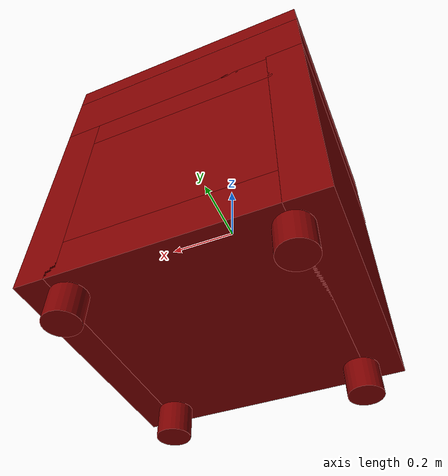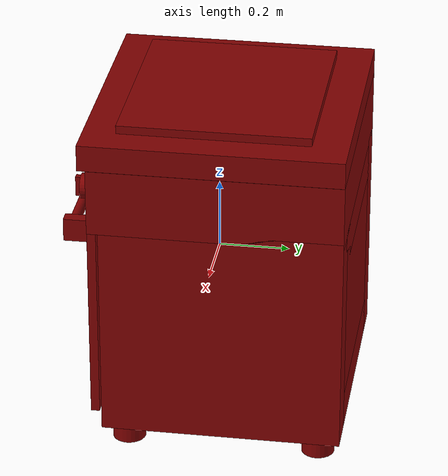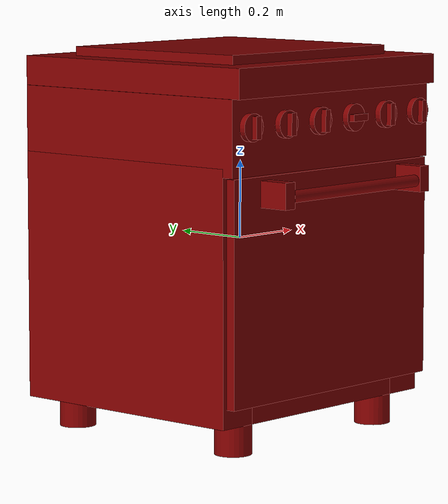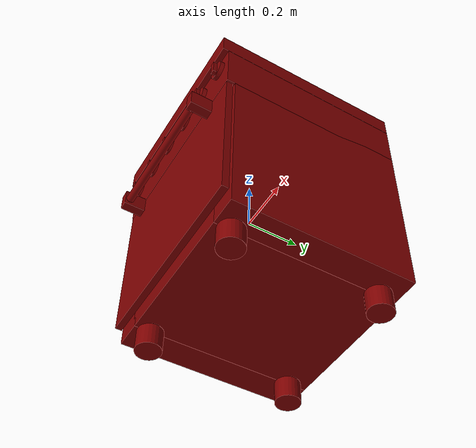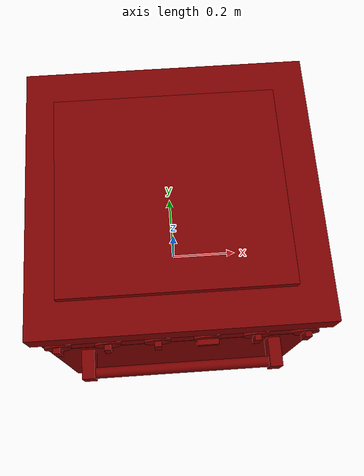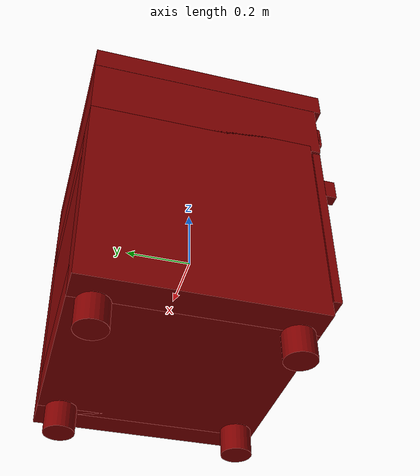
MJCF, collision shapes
<?xml version='1.0' encoding='UTF-8'?>
<mujoco model="model">
  <compiler angle="radian"/>
  <asset>
    <mesh file="visuals/knob_front_left.obj" name="knob_front_left_vis"/>
    <mesh file="visuals/knob_front_right.obj" name="knob_front_right_vis"/>
    <mesh file="visuals/knob_rear_left.obj" name="knob_rear_left_vis"/>
    <mesh file="visuals/knob_rear_right.obj" name="knob_rear_right_vis"/>
    <mesh file="visuals/Body001.obj" name="Body001_vis"/>
    <mesh file="visuals/Body002.obj" name="Body002_vis"/>
    <mesh file="visuals/Door001.obj" name="Door001_vis"/>
    <mesh file="visuals/Door001_Clear.obj" name="Door001_Clear_vis"/>
    <mesh file="visuals/Knob001.obj" name="Knob001_vis"/>
    <mesh file="visuals/Knob002.obj" name="Knob002_vis"/>
    <mesh file="visuals/Shelf001.obj" name="Shelf001_vis"/>
    <mesh file="visuals/Shelf002.obj" name="Shelf002_vis"/>
    <texture file="visuals/T_BC001.png" name="Body001_material" type="2d"/>
    <material name="Body001_material" rgba="1 1 1 1.0" texture="Body001_material" shininess="0.1" specular="2"/>
    <texture file="visuals/T_BC001.png" name="knob_front_left_material" type="2d"/>
    <material name="knob_front_left_material" rgba="1 1 1 1.0" texture="knob_front_left_material" shininess="0.1" specular="1"/>
    <texture file="visuals/T_BC001.png" name="knob_front_right_material" type="2d"/>
    <material name="knob_front_right_material" rgba="1 1 1 1.0" texture="knob_front_right_material" shininess="0.1" specular="1"/>
    <texture file="visuals/T_BC001.png" name="knob_rear_left_material" type="2d"/>
    <material name="knob_rear_left_material" rgba="1 1 1 1.0" texture="knob_rear_left_material" shininess="0.1" specular="1"/>
    <texture file="visuals/T_BC001.png" name="knob_rear_right_material" type="2d"/>
    <material name="knob_rear_right_material" rgba="1 1 1 1.0" texture="knob_rear_right_material" shininess="0.1" specular="1"/>
    <texture file="visuals/T_BC001.png" name="Body002_material" type="2d"/>
    <material name="Body002_material" rgba="1 1 1 1.0" texture="Body002_material" shininess="0.1" specular="1"/>
    <texture file="visuals/T_BC001.png" name="Door001_material" type="2d"/>
    <material name="Door001_material" rgba="1 1 1 1.0" texture="Door001_material" shininess="0.1" specular="1"/>
    <material name="Door001_Clear_material" rgba="0.3919156491756439 0.3919156491756439 0.3919156491756439 0.5" shininess="0.1" specular="1"/>
    <texture file="visuals/T_BC001.png" name="Knob001_material" type="2d"/>
    <material name="Knob001_material" rgba="1 1 1 1.0" texture="Knob001_material" shininess="0.1" specular="1"/>
    <texture file="visuals/T_BC001.png" name="Knob002_material" type="2d"/>
    <material name="Knob002_material" rgba="1 1 1 1.0" texture="Knob002_material" shininess="0.1" specular="1"/>
    <texture file="visuals/T_BC001.png" name="Shelf001_material" type="2d"/>
    <material name="Shelf001_material" rgba="1 1 1 1.0" texture="Shelf001_material" shininess="0.1" specular="1"/>
    <texture file="visuals/T_BC001.png" name="Shelf002_material" type="2d"/>
    <material name="Shelf002_material" rgba="1 1 1 1.0" texture="Shelf002_material" shininess="0.1" specular="1"/>
  </asset>
  <default>
    <default class="visual">
      <geom conaffinity="0" contype="0" group="1" type="mesh"/>
    </default>
    <default class="collision">
      <geom group="0" rgba="0.5 0 0 0.5"/>
    </default>
    <default class="spawn">
      <geom group="0" rgba="1 1 1 0.5" contype="0" conaffinity="0"/>
      <site group="0" rgba="1 1 1 0.5"/>
    </default>
    <default class="region">
      <geom group="1" conaffinity="0" contype="0" rgba="0 1 0 0"/>
    </default>
  </default>
  <worldbody>
    <body>
      <body name="object">
        <site type="cylinder" rgba="0.3 0.4 1 0.5" size="0.07357610762119293 0.0070569878444075584" pos="-0.15963366627693176 -0.10725317895412445 0.468623548746109" name="burner_on_front_left"/>
        <site type="cylinder" rgba="0.3 0.4 1 0.5" size="0.07357610762119293 0.0070569878444075584" pos="0.15184441208839417 -0.10725317895412445 0.468623548746109" name="burner_on_front_right"/>
        <site type="cylinder" rgba="0.3 0.4 1 0.5" size="0.07357610762119293 0.0070569878444075584" pos="-0.15963366627693176 0.1568083018064499 0.468623548746109" name="burner_on_rear_left"/>
        <site type="cylinder" rgba="0.3 0.4 1 0.5" size="0.07357610762119293 0.0070569878444075584" pos="0.15184441208839417 0.1568083018064499 0.468623548746109" name="burner_on_rear_right"/>
        <geom mesh="Body001_vis" type="mesh" solimp="0.998 0.998 0.001" solref="0.001 1" density="100" friction="0.95 0.3 0.1" class="visual" material="Body001_material"/>
        <geom class="collision" type="box" pos="0.0 0.03086765669286251 0.43377214670181274" size="0.3763693869113922 0.3646935522556305 0.03754124045372009" quat="1.0 0.0 0.0 0.0"/>
        <geom class="collision" type="box" pos="-0.006305759772658348 0.026157546788454056 0.47956278920173645" size="0.2919226288795471 0.2680940330028534 0.01525197271257639" quat="1.0 0.0 0.0 0.0"/>
        <geom class="collision" type="box" pos="0.0 0.04199814796447754 0.30052563548088074" size="0.3763693869113922 0.3535631000995636 0.09539087116718292" quat="1.0 0.0 0.0 0.0"/>
        <geom class="collision" type="box" pos="-0.32309895753860474 0.057262521237134933 -0.09348022937774658" size="0.05327043682336807 0.3382987082004547 0.31983500719070435" quat="1.0 0.0 0.0 0.0"/>
        <geom class="collision" type="box" pos="0.32322534918785095 0.057262521237134933 -0.09348022937774658" size="0.05314407870173454 0.3382987082004547 0.31983500719070435" quat="1.0 0.0 0.0 0.0"/>
        <geom class="collision" type="box" pos="0.006585642695426941 0.057262521237134933 -0.3596256971359253" size="0.2886805534362793 0.3382987082004547 0.053689561784267426" quat="1.0 0.0 0.0 0.0"/>
        <geom class="collision" type="box" pos="0.006585642695426941 0.2979070842266083 -0.05163457989692688" size="0.2886805534362793 0.09765408933162689 0.2812975347042084" quat="1.0 0.0 0.0 0.0"/>
        <geom class="collision" type="box" pos="0.006585642695426941 0.057262521237134933 0.16087020933628082" size="0.2886805534362793 0.3382987082004547 0.053689561784267426" quat="1.0 0.0 0.0 0.0"/>
        <geom class="collision" type="cylinder" pos="-0.27166327834129333 0.32449132204055786 -0.4482637047767639" size="0.04706542566418648 0.04655295982956886" quat="1.0 0.0 0.0 0.0"/>
        <geom class="collision" type="cylinder" pos="0.2722174823284149 0.32449132204055786 -0.4482637047767639" size="0.04706542566418648 0.04655295982956886" quat="1.0 0.0 0.0 0.0"/>
        <geom class="collision" type="cylinder" pos="0.2722174823284149 -0.22101905941963196 -0.4482637047767639" size="0.04706542566418648 0.04655295982956886" quat="1.0 0.0 0.0 0.0"/>
        <geom class="collision" type="cylinder" pos="-0.2722606658935547 -0.22101905941963196 -0.4482637047767639" size="0.04706542566418648 0.04655295982956886" quat="1.0 0.0 0.0 0.0"/>
        <geom class="collision" type="box" pos="-0.25629091262817383 -0.033120300620794296 -0.04849499091506004" size="0.02580404467880726 0.20058277249336243 0.0038279599975794554" quat="1.0 0.0 0.0 0.0"/>
        <geom class="collision" type="box" pos="-0.25629091262817383 -0.01993267424404621 -0.06944065541028976" size="0.02580404467880726 0.20058277249336243 0.0038279599975794554" quat="1.0 0.0 0.0 0.0"/>
        <geom class="collision" type="box" pos="-0.25629091262817383 -0.01993267424404621 -0.20191225409507751" size="0.02580404467880726 0.20058277249336243 0.0038279599975794554" quat="1.0 0.0 0.0 0.0"/>
        <geom class="collision" type="box" pos="-0.25629091262817383 -0.033120300620794296 -0.18262764811515808" size="0.02580404467880726 0.20058277249336243 0.0038279599975794554" quat="1.0 0.0 0.0 0.0"/>
        <geom class="collision" type="box" pos="0.26043957471847534 -0.033120300620794296 -0.18262764811515808" size="0.02580404467880726 0.20058277249336243 0.0038279599975794554" quat="1.0 0.0 0.0 0.0"/>
        <geom class="collision" type="box" pos="0.25882387161254883 -0.01993267424404621 -0.20191225409507751" size="0.02580404467880726 0.20058277249336243 0.0038279599975794554" quat="1.0 0.0 0.0 0.0"/>
        <geom class="collision" type="box" pos="0.25882387161254883 -0.01993267424404621 -0.06903617084026337" size="0.02580404467880726 0.20058277249336243 0.0038279599975794554" quat="1.0 0.0 0.0 0.0"/>
        <geom class="collision" type="box" pos="0.26043957471847534 -0.033120300620794296 -0.04975156486034393" size="0.02580404467880726 0.20058277249336243 0.0038279599975794554" quat="1.0 0.0 0.0 0.0"/>
        <body name="knob_front_left">
          <joint axis="0.0 -1.0 0.0" pos="-0.32040098309516907 -0.3286569118499756 0.3257809281349182" limited="true" name="knob_front_left_joint" range="0.0 3.141592653589793" type="hinge" damping="0.05" armature="0.001"/>
          <geom mesh="knob_front_left_vis" type="mesh" solimp="0.998 0.998 0.001" solref="0.001 1" density="100" friction="0.95 0.3 0.1" class="visual" material="knob_front_left_material"/>
          <geom class="collision" type="cylinder" pos="-0.3210730254650116 -0.32377225160598755 0.32581019401550293" size="0.034505799412727356 0.00798241887241602" quat="0.7071067094802856 0.7071068286895752 0.0 0.0"/>
          <geom class="collision" type="box" pos="-0.3196628987789154 -0.33963024616241455 0.3263888359069824" size="0.008670815266668797 0.007262000814080238 0.02791677787899971" quat="1.0 0.0 0.0 0.0" name="knob_front_left_main"/>
        </body>
        <body name="knob_front_right">
          <joint axis="0.0 -1.0 0.0" pos="0.32292112708091736 -0.3286569118499756 0.3257809281349182" limited="true" name="knob_front_right_joint" range="0.0 3.141592653589793" type="hinge" damping="0.05" armature="0.001"/>
          <geom mesh="knob_front_right_vis" type="mesh" solimp="0.998 0.998 0.001" solref="0.001 1" density="100" friction="0.95 0.3 0.1" class="visual" material="knob_front_right_material"/>
          <geom class="collision" type="box" pos="0.3228445053100586 -0.33963024616241455 0.3263888359069824" size="0.008670815266668797 0.007262000814080238 0.02791677787899971" quat="1.0 0.0 0.0 0.0" name="knob_front_right_main"/>
          <geom class="collision" type="cylinder" pos="0.3227652907371521 -0.32377225160598755 0.32581019401550293" size="0.034505799412727356 0.00798241887241602" quat="0.7071067094802856 0.7071068286895752 0.0 0.0"/>
        </body>
        <body name="knob_rear_left">
          <joint axis="0.0 -1.0 0.0" pos="-0.19112378358840942 -0.3286569118499756 0.3257809281349182" limited="true" name="knob_rear_left_joint" range="0.0 3.141592653589793" type="hinge" damping="0.05" armature="0.001"/>
          <geom mesh="knob_rear_left_vis" type="mesh" solimp="0.998 0.998 0.001" solref="0.001 1" density="100" friction="0.95 0.3 0.1" class="visual" material="knob_rear_left_material"/>
          <geom class="collision" type="box" pos="-0.19054844975471497 -0.33963024616241455 0.3263888359069824" size="0.008670815266668797 0.007262000814080238 0.02791677787899971" quat="1.0 0.0 0.0 0.0" name="knob_rear_left_main"/>
          <geom class="collision" type="cylinder" pos="-0.19195857644081116 -0.32377225160598755 0.32581019401550293" size="0.034505799412727356 0.00798241887241602" quat="0.7071067094802856 0.7071068286895752 0.0 0.0"/>
        </body>
        <body name="knob_rear_right">
          <joint axis="0.0 -1.0 0.0" pos="0.19418977200984955 -0.3286569118499756 0.3257809281349182" limited="true" name="knob_rear_right_joint" range="0.0 3.141592653589793" type="hinge" damping="0.05" armature="0.001"/>
          <geom mesh="knob_rear_right_vis" type="mesh" solimp="0.998 0.998 0.001" solref="0.001 1" density="100" friction="0.95 0.3 0.1" class="visual" material="knob_rear_right_material"/>
          <geom class="collision" type="box" pos="0.19378328323364258 -0.33963024616241455 0.3263888359069824" size="0.008670815266668797 0.007262000814080238 0.02791677787899971" quat="1.0 0.0 0.0 0.0" name="knob_rear_right_main"/>
          <geom class="collision" type="cylinder" pos="0.19389420747756958 -0.32377225160598755 0.32581019401550293" size="0.034505799412727356 0.00798241887241602" quat="0.7071067094802856 0.7071068286895752 0.0 0.0"/>
        </body>
        <body name="Body002">
          <geom mesh="Body002_vis" type="mesh" solimp="0.998 0.998 0.001" solref="0.001 1" density="100" friction="0.95 0.3 0.1" class="visual" material="Body002_material"/>
        </body>
        <body name="Door001">
          <joint axis="1.0 0.0 0.0" pos="-0.01463734358549118 -0.2801492214202881 -0.38982415199279785" limited="true" name="Door001_joint" range="0.0 1.5707963267948966" type="hinge" damping="1" frictionloss="1" armature=".01" stiffness="4" springref="-1"/>
          <geom mesh="Door001_vis" type="mesh" solimp="0.998 0.998 0.001" solref="0.001 1" density="100" friction="0.95 0.3 0.1" class="visual" material="Door001_material"/>
          <geom class="collision" type="box" pos="0.00021983569604344666 -0.29964780807495117 -0.07998877763748169" size="0.3707135319709778 0.01222648099064827 0.2822990417480469" quat="1.0 0.0 0.0 0.0"/>
          <geom class="collision" type="box" pos="-0.26121705770492554 -0.3563361167907715 0.1604902595281601" size="0.017483213916420937 0.04034731164574623 0.03301427513360977" quat="1.0 0.0 0.0 0.0"/>
          <geom class="collision" type="box" pos="0.2615010738372803 -0.3563361167907715 0.1604902595281601" size="0.017483221367001534 0.040347326546907425 0.033014290034770966" quat="1.0 0.0 0.0 0.0"/>
          <geom class="collision" type="cylinder" pos="0.0019762665033340454 -0.37796130776405334 0.15523867309093475" size="0.015277725644409657 0.24750691652297974" quat="0.7071068286895752 -0.0 0.7071067690849304 0.0"/>
          <body name="Door001_Clear">
            <geom mesh="Door001_Clear_vis" type="mesh" solimp="0.998 0.998 0.001" solref="0.001 1" density="100" friction="0.95 0.3 0.1" class="visual" material="Door001_Clear_material"/>
            <geom class="collision" type="box" pos="0.0032850790303200483 -0.29997652769088745 -0.10900797694921494" size="0.24195370078086853 0.003646909026429057 0.16780593991279602" quat="1.0 0.0 0.0 0.0"/>
          </body>
        </body>
        <body name="Knob001">
          <joint axis="0.0 1.0 0.0" pos="-0.06271379441022873 -0.3286569118499756 0.3257809281349182" limited="true" name="Knob001_joint" range="0.0 4.014257279586958" type="hinge" damping="0.05" armature="0.001"/>
          <geom mesh="Knob001_vis" type="mesh" solimp="0.998 0.998 0.001" solref="0.001 1" density="100" friction="0.95 0.3 0.1" class="visual" material="Knob001_material"/>
          <geom class="collision" type="box" pos="-0.062285758554935455 -0.33963024616241455 0.3263888359069824" size="0.008670815266668797 0.007262000814080238 0.02791677787899971" quat="1.0 0.0 0.0 0.0"/>
          <geom class="collision" type="cylinder" pos="-0.06369588524103165 -0.32377225160598755 0.32581019401550293" size="0.034505799412727356 0.00798241887241602" quat="0.7071067094802856 0.7071068286895752 0.0 0.0"/>
        </body>
        <body name="Knob002">
          <joint axis="0.0 1.0 0.0" pos="0.06530759483575821 -0.3286569118499756 0.3257809281349182" limited="true" name="Knob002_joint" range="0.0 3.2288591161895095" type="hinge" damping="0.05" armature="0.001"/>
          <geom mesh="Knob002_vis" type="mesh" solimp="0.998 0.998 0.001" solref="0.001 1" density="100" friction="0.95 0.3 0.1" class="visual" material="Knob002_material"/>
          <geom class="collision" type="box" pos="0.06666139513254166 -0.33963024616241455 0.3263888359069824" size="0.02791677787899971 0.007262000814080238 0.008670817129313946" quat="1.0 0.0 0.0 0.0"/>
          <geom class="collision" type="cylinder" pos="0.06525126844644547 -0.32377225160598755 0.32581019401550293" size="0.034505799412727356 0.00798241887241602" quat="0.7071067094802856 0.7071068286895752 0.0 0.0"/>
        </body>
        <body name="Shelf001">
          <joint axis="0.0 -1.0 0.0" pos="-0.002451067790389061 -0.02057851478457451 -0.06110106036067009" limited="true" name="Shelf001_joint" range="0.0 0.3" type="slide" damping="1" frictionloss="1" armature=".01" stiffness="0.05"/>
          <geom mesh="Shelf001_vis" type="mesh" solimp="0.998 0.998 0.001" solref="0.001 1" density="100" friction="0.95 0.3 0.1" class="visual" material="Shelf001_material"/>
          <geom class="collision" type="box" pos="0.0030691921710968018 -0.02330368012189865 -0.059544190764427185" size="0.22826971113681793 0.18145930767059326 0.0038279599975794554" quat="1.0 0.0 0.0 0.0"/>
        </body>
        <body name="Shelf002">
          <joint axis="0.0 -1.0 0.0" pos="-0.002451067790389061 -0.020578503608703613 -0.19637905061244965" limited="true" name="Shelf002_joint" range="0.0 0.3" type="slide" damping="1" frictionloss="1" armature=".01" stiffness="0.05"/>
          <geom mesh="Shelf002_vis" type="mesh" solimp="0.998 0.998 0.001" solref="0.001 1" density="100" friction="0.95 0.3 0.1" class="visual" material="Shelf002_material"/>
          <geom class="collision" type="box" pos="0.0030691921710968018 -0.02330368012189865 -0.19393564760684967" size="0.22826971113681793 0.18145930767059326 0.0038279599975794554" quat="1.0 0.0 0.0 0.0"/>
        </body>
        <site name="burner_front_left_place_site" type="cylinder" rgba="0.3 0.4 1 0" size="0.07357610762119293 0.0070569878444075584" pos="-0.15963366627693176 -0.10725317895412445 0.468623548746109"/>
        <site name="burner_front_right_place_site" type="cylinder" rgba="0.3 0.4 1 0" size="0.07357610762119293 0.0070569878444075584" pos="0.15184441208839417 -0.10725317895412445 0.468623548746109"/>
        <site name="burner_rear_left_place_site" type="cylinder" rgba="0.3 0.4 1 0" size="0.07357610762119293 0.0070569878444075584" pos="-0.15963366627693176 0.1568083018064499 0.468623548746109"/>
        <site name="burner_rear_right_place_site" type="cylinder" rgba="0.3 0.4 1 0" size="0.07357610762119293 0.0070569878444075584" pos="0.15184441208839417 0.1568083018064499 0.468623548746109"/>
        <geom class="region" name="reg_main" type="box" pos="-7.450580596923828e-09 0.041034772992134094 -9.685754776000977e-07" size="0.3763694167137146 0.35452643036842346 0.4948157072067261"/>
        <geom class="region" name="reg_int" type="box" pos="0.0021431148052215576 -0.036226481199264526 -0.08823640644550323" size="0.27363157272338867 0.24100592732429504 0.21947170794010162"/>
      </body>
    </body>
  </worldbody>
  <actuator>
    <motor name="knob_front_left_joint_actuator" joint="knob_front_left_joint" gear="10"/>
    <motor name="knob_front_right_joint_actuator" joint="knob_front_right_joint" gear="10"/>
    <motor name="knob_rear_left_joint_actuator" joint="knob_rear_left_joint" gear="10"/>
    <motor name="knob_rear_right_joint_actuator" joint="knob_rear_right_joint" gear="10"/>
    <motor name="Door001_joint_actuator" joint="Door001_joint" gear="50"/>
    <motor name="Knob001_joint_actuator" joint="Knob001_joint" gear="50"/>
    <motor name="Knob002_joint_actuator" joint="Knob002_joint" gear="50"/>
    <motor name="Shelf001_joint_actuator" joint="Shelf001_joint" gear="50"/>
    <motor name="Shelf002_joint_actuator" joint="Shelf002_joint" gear="50"/>
  </actuator>
</mujoco>
